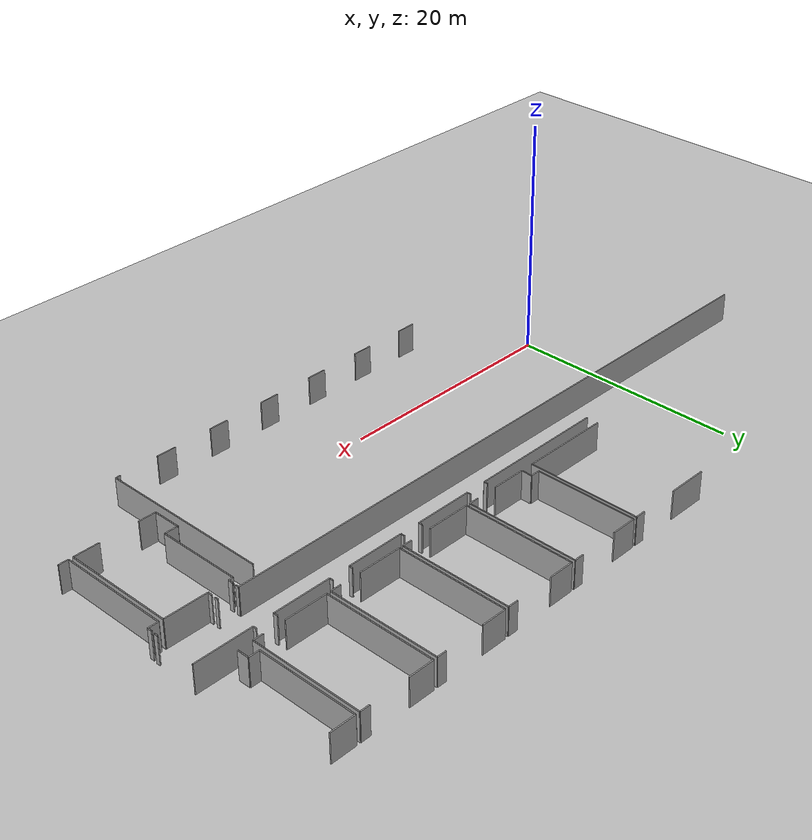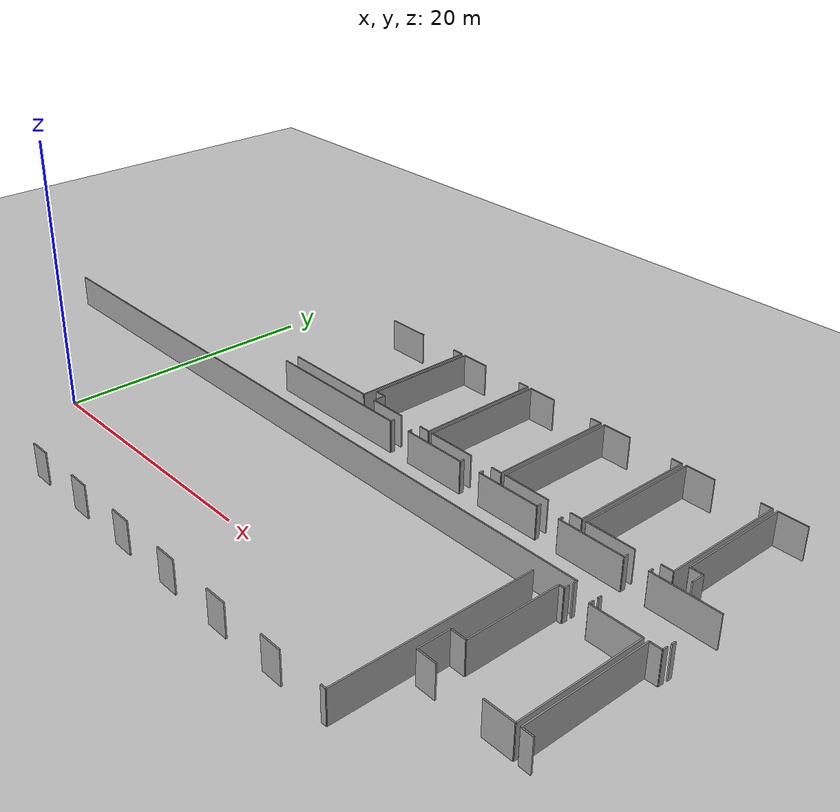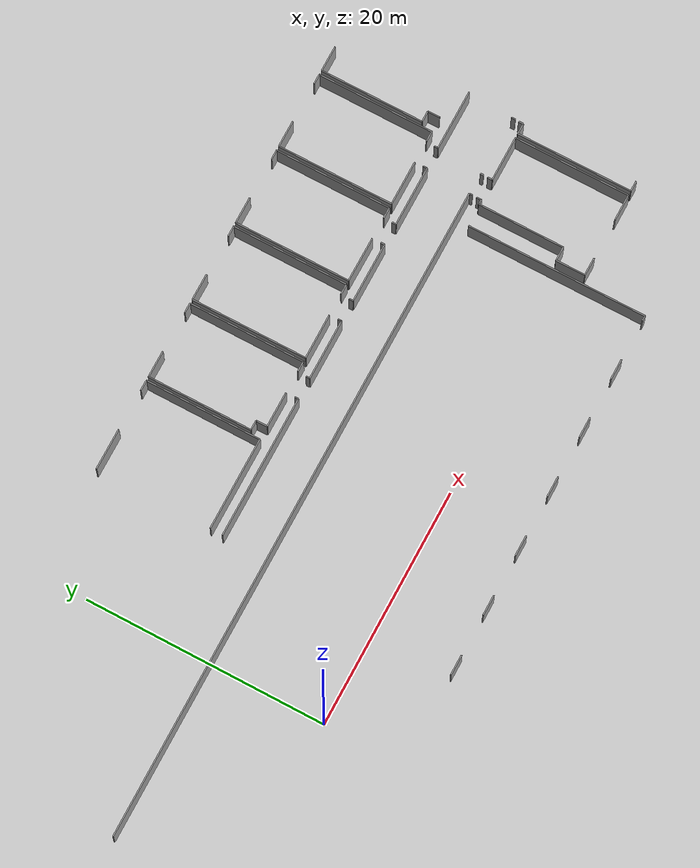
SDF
<sdf version="1.6">
 <world name="default">
  <model name="ground_plane">
   <static>1</static>
   <link name="link">
    <collision name="collision">
     <geometry><plane><normal>0 0 1</normal><size>100 100</size></plane></geometry>
     <surface><friction><ode><mu>100</mu><mu2>50</mu2></ode></friction></surface>
    </collision>
    <visual name="visual">
     <cast_shadows>0</cast_shadows>
     <geometry><plane><normal>0 0 1</normal><size>100 100</size></plane></geometry>
     <material>
      <script><uri>file://media/materials/scripts/gazebo.material</uri><name>Gazebo/Grey</name></script>
     </material>
    </visual>
   </link>
  </model>
  <model name="0510032196_A_40_1_104">
   <static>1</static>
   <link name="Wall_83">
    <collision name="Wall_83_Collision">
     <geometry><box><size>3.43119312694 0.1 2.5</size></box></geometry>
     <pose>1.71559656347 0 1.25 0 0 0</pose>
    </collision>
    <visual name="Wall_83_Visual">
     <pose>1.71559656347 0 1.25 0 0 0</pose>
     <geometry><box><size>3.43119312694 0.1 2.5</size></box></geometry>
     <material>
      <script><uri>file://media/materials/scripts/gazebo.material</uri><name>Gazebo/Grey</name></script>
      <ambient>1 1 1 1</ambient>
     </material>
    </visual>
    <pose>74.0686797824 -0.31976005287 0 0 0 0.0</pose>
   </link>
   <link name="Wall_84">
    <collision name="Wall_84_Collision">
     <geometry><box><size>0.885821768085 0.1 2.5</size></box></geometry>
     <pose>0.442910884042 0 1.25 0 0 0</pose>
    </collision>
    <visual name="Wall_84_Visual">
     <pose>0.442910884042 0 1.25 0 0 0</pose>
     <geometry><box><size>0.885821768085 0.1 2.5</size></box></geometry>
     <material>
      <script><uri>file://media/materials/scripts/gazebo.material</uri><name>Gazebo/Grey</name></script>
      <ambient>1 1 1 1</ambient>
     </material>
    </visual>
    <pose>80.917721519 -0.31976005287 0 0 0 0.0</pose>
   </link>
   <link name="Wall_85">
    <collision name="Wall_85_Collision">
     <geometry><box><size>9.62520969956 0.1 2.5</size></box></geometry>
     <pose>4.81260484978 0 1.25 0 0 0</pose>
    </collision>
    <visual name="Wall_85_Visual">
     <pose>4.81260484978 0 1.25 0 0 0</pose>
     <geometry><box><size>9.62520969956 0.1 2.5</size></box></geometry>
     <material>
      <script><uri>file://media/materials/scripts/gazebo.material</uri><name>Gazebo/Grey</name></script>
      <ambient>1 1 1 1</ambient>
     </material>
    </visual>
    <pose>81.8035432871 -0.31976005287 0 0 0 -1.57079632679</pose>
   </link>
   <link name="Wall_86">
    <collision name="Wall_86_Collision">
     <geometry><box><size>7.70703065426 0.1 2.5</size></box></geometry>
     <pose>3.85351532713 0 1.25 0 0 0</pose>
    </collision>
    <visual name="Wall_86_Visual">
     <pose>3.85351532713 0 1.25 0 0 0</pose>
     <geometry><box><size>7.70703065426 0.1 2.5</size></box></geometry>
     <material>
      <script><uri>file://media/materials/scripts/gazebo.material</uri><name>Gazebo/Grey</name></script>
      <ambient>1 1 1 1</ambient>
     </material>
    </visual>
    <pose>81.8035432871 -9.94496975243 0 0 0 3.14159265359</pose>
   </link>
   <link name="Wall_88">
    <collision name="Wall_88_Collision">
     <geometry><box><size>0.935895480657 0.1 2.5</size></box></geometry>
     <pose>0.467947740328 0 1.25 0 0 0</pose>
    </collision>
    <visual name="Wall_88_Visual">
     <pose>0.467947740328 0 1.25 0 0 0</pose>
     <geometry><box><size>0.935895480657 0.1 2.5</size></box></geometry>
     <material>
      <script><uri>file://media/materials/scripts/gazebo.material</uri><name>Gazebo/Grey</name></script>
      <ambient>1 1 1 1</ambient>
     </material>
    </visual>
    <pose>82.9399877993 -9.94598647756 0 0 0 1.57079632679</pose>
   </link>
   <link name="Wall_89">
    <collision name="Wall_89_Collision">
     <geometry><box><size>0.818972090895 0.1 2.5</size></box></geometry>
     <pose>0.409486045448 0 1.25 0 0 0</pose>
    </collision>
    <visual name="Wall_89_Visual">
     <pose>0.409486045448 0 1.25 0 0 0</pose>
     <geometry><box><size>0.818972090895 0.1 2.5</size></box></geometry>
     <material>
      <script><uri>file://media/materials/scripts/gazebo.material</uri><name>Gazebo/Grey</name></script>
      <ambient>1 1 1 1</ambient>
     </material>
    </visual>
    <pose>82.9399877993 -9.0100909969 0 0 0 3.14159265359</pose>
   </link>
   <link name="Wall_90">
    <collision name="Wall_90_Collision">
     <geometry><box><size>8.69033094403 0.1 2.5</size></box></geometry>
     <pose>4.34516547201 0 1.25 0 0 0</pose>
    </collision>
    <visual name="Wall_90_Visual">
     <pose>4.34516547201 0 1.25 0 0 0</pose>
     <geometry><box><size>8.69033094403 0.1 2.5</size></box></geometry>
     <material>
      <script><uri>file://media/materials/scripts/gazebo.material</uri><name>Gazebo/Grey</name></script>
      <ambient>1 1 1 1</ambient>
     </material>
    </visual>
    <pose>82.1210157084 -9.0100909969 0 0 0 1.57079632679</pose>
   </link>
   <link name="Wall_91">
    <collision name="Wall_91_Collision">
     <geometry><box><size>2.22434039957 0.1 2.5</size></box></geometry>
     <pose>1.11217019979 0 1.25 0 0 0</pose>
    </collision>
    <visual name="Wall_91_Visual">
     <pose>1.11217019979 0 1.25 0 0 0</pose>
     <geometry><box><size>2.22434039957 0.1 2.5</size></box></geometry>
     <material>
      <script><uri>file://media/materials/scripts/gazebo.material</uri><name>Gazebo/Grey</name></script>
      <ambient>1 1 1 1</ambient>
     </material>
    </visual>
    <pose>82.1210157084 -0.31976005287 0 0 0 0.0</pose>
   </link>
   <link name="Wall_92">
    <collision name="Wall_92_Collision">
     <geometry><box><size>0.848202938336 0.1 2.5</size></box></geometry>
     <pose>0.424101469168 0 1.25 0 0 0</pose>
    </collision>
    <visual name="Wall_92_Visual">
     <pose>0.424101469168 0 1.25 0 0 0</pose>
     <geometry><box><size>0.848202938336 0.1 2.5</size></box></geometry>
     <material>
      <script><uri>file://media/materials/scripts/gazebo.material</uri><name>Gazebo/Grey</name></script>
      <ambient>1 1 1 1</ambient>
     </material>
    </visual>
    <pose>87.7559605511 -0.31976005287 0 0 0 0.0</pose>
   </link>
   <link name="Wall_93">
    <collision name="Wall_93_Collision">
     <geometry><box><size>9.62965787199 0.1 2.5</size></box></geometry>
     <pose>4.814828936 0 1.25 0 0 0</pose>
    </collision>
    <visual name="Wall_93_Visual">
     <pose>4.814828936 0 1.25 0 0 0</pose>
     <geometry><box><size>9.62965787199 0.1 2.5</size></box></geometry>
     <material>
      <script><uri>file://media/materials/scripts/gazebo.material</uri><name>Gazebo/Grey</name></script>
      <ambient>1 1 1 1</ambient>
     </material>
    </visual>
    <pose>88.6041634894 -0.31976005287 0 0 0 -1.57079632679</pose>
   </link>
   <link name="Wall_94">
    <collision name="Wall_94_Collision">
     <geometry><box><size>0.871968888211 0.1 2.5</size></box></geometry>
     <pose>0.435984444106 0 1.25 0 0 0</pose>
    </collision>
    <visual name="Wall_94_Visual">
     <pose>0.435984444106 0 1.25 0 0 0</pose>
     <geometry><box><size>0.871968888211 0.1 2.5</size></box></geometry>
     <material>
      <script><uri>file://media/materials/scripts/gazebo.material</uri><name>Gazebo/Grey</name></script>
      <ambient>1 1 1 1</ambient>
     </material>
    </visual>
    <pose>88.6041634894 -9.94941792486 0 0 0 3.14159265359</pose>
   </link>
   <link name="Wall_95">
    <collision name="Wall_95_Collision">
     <geometry><box><size>2.92944128583 0.1 2.5</size></box></geometry>
     <pose>1.46472064292 0 1.25 0 0 0</pose>
    </collision>
    <visual name="Wall_95_Visual">
     <pose>1.46472064292 0 1.25 0 0 0</pose>
     <geometry><box><size>2.92944128583 0.1 2.5</size></box></geometry>
     <material>
      <script><uri>file://media/materials/scripts/gazebo.material</uri><name>Gazebo/Grey</name></script>
      <ambient>1 1 1 1</ambient>
     </material>
    </visual>
    <pose>85.8694270754 -9.94941792486 0 0 0 3.14042128753</pose>
   </link>
   <link name="Wall_96">
    <collision name="Wall_96_Collision">
     <geometry><box><size>9.6330893193 0.1 2.5</size></box></geometry>
     <pose>4.81654465965 0 1.25 0 0 0</pose>
    </collision>
    <visual name="Wall_96_Visual">
     <pose>4.81654465965 0 1.25 0 0 0</pose>
     <geometry><box><size>9.6330893193 0.1 2.5</size></box></geometry>
     <material>
      <script><uri>file://media/materials/scripts/gazebo.material</uri><name>Gazebo/Grey</name></script>
      <ambient>1 1 1 1</ambient>
     </material>
    </visual>
    <pose>88.9398098724 -9.96276244217 0 0 0 1.57079632679</pose>
   </link>
   <link name="Wall_97">
    <collision name="Wall_97_Collision">
     <geometry><box><size>2.22090895226 0.1 2.5</size></box></geometry>
     <pose>1.11045447613 0 1.25 0 0 0</pose>
    </collision>
    <visual name="Wall_97_Visual">
     <pose>1.11045447613 0 1.25 0 0 0</pose>
     <geometry><box><size>2.22090895226 0.1 2.5</size></box></geometry>
     <material>
      <script><uri>file://media/materials/scripts/gazebo.material</uri><name>Gazebo/Grey</name></script>
      <ambient>1 1 1 1</ambient>
     </material>
    </visual>
    <pose>88.9398098724 -0.329673122871 0 0 0 0.0</pose>
   </link>
   <link name="Wall_98">
    <collision name="Wall_98_Collision">
     <geometry><box><size>0.890142849881 0.1 2.5</size></box></geometry>
     <pose>0.44507142494 0 1.25 0 0 0</pose>
    </collision>
    <visual name="Wall_98_Visual">
     <pose>0.44507142494 0 1.25 0 0 0</pose>
     <geometry><box><size>0.890142849881 0.1 2.5</size></box></geometry>
     <material>
      <script><uri>file://media/materials/scripts/gazebo.material</uri><name>Gazebo/Grey</name></script>
      <ambient>1 1 1 1</ambient>
     </material>
    </visual>
    <pose>94.5452696863 -0.329673122871 0 0 0 0.0</pose>
   </link>
   <link name="Wall_99">
    <collision name="Wall_99_Collision">
     <geometry><box><size>9.62076152712 0.1 2.5</size></box></geometry>
     <pose>4.81038076356 0 1.25 0 0 0</pose>
    </collision>
    <visual name="Wall_99_Visual">
     <pose>4.81038076356 0 1.25 0 0 0</pose>
     <geometry><box><size>9.62076152712 0.1 2.5</size></box></geometry>
     <material>
      <script><uri>file://media/materials/scripts/gazebo.material</uri><name>Gazebo/Grey</name></script>
      <ambient>1 1 1 1</ambient>
     </material>
    </visual>
    <pose>95.4354125362 -0.329673122871 0 0 0 -1.57079632679</pose>
   </link>
   <link name="Wall_100">
    <collision name="Wall_100_Collision">
     <geometry><box><size>0.86815616898 0.1 2.5</size></box></geometry>
     <pose>0.43407808449 0 1.25 0 0 0</pose>
    </collision>
    <visual name="Wall_100_Visual">
     <pose>0.43407808449 0 1.25 0 0 0</pose>
     <geometry><box><size>0.86815616898 0.1 2.5</size></box></geometry>
     <material>
      <script><uri>file://media/materials/scripts/gazebo.material</uri><name>Gazebo/Grey</name></script>
      <ambient>1 1 1 1</ambient>
     </material>
    </visual>
    <pose>95.4354125362 -9.95043464999 0 0 0 3.14159265359</pose>
   </link>
   <link name="Wall_101">
    <collision name="Wall_101_Collision">
     <geometry><box><size>3.7673680424 0.1 2.5</size></box></geometry>
     <pose>1.8836840212 0 1.25 0 0 0</pose>
    </collision>
    <visual name="Wall_101_Visual">
     <pose>1.8836840212 0 1.25 0 0 0</pose>
     <geometry><box><size>3.7673680424 0.1 2.5</size></box></geometry>
     <material>
      <script><uri>file://media/materials/scripts/gazebo.material</uri><name>Gazebo/Grey</name></script>
      <ambient>1 1 1 1</ambient>
     </material>
    </visual>
    <pose>92.7071577449 -9.95043464999 0 0 0 -3.13832039188</pose>
   </link>
   <link name="Wall_102">
    <collision name="Wall_102_Collision">
     <geometry><box><size>9.62660769661 0.1 2.5</size></box></geometry>
     <pose>4.8133038483 0 1.25 0 0 0</pose>
    </collision>
    <visual name="Wall_102_Visual">
     <pose>4.8133038483 0 1.25 0 0 0</pose>
     <geometry><box><size>9.62660769661 0.1 2.5</size></box></geometry>
     <material>
      <script><uri>file://media/materials/scripts/gazebo.material</uri><name>Gazebo/Grey</name></script>
      <ambient>1 1 1 1</ambient>
     </material>
    </visual>
    <pose>95.758731127 -9.94598647756 0 0 0 1.57079632679</pose>
   </link>
   <link name="Wall_103">
    <collision name="Wall_103_Collision">
     <geometry><box><size>2.22281531188 0.1 2.5</size></box></geometry>
     <pose>1.11140765594 0 1.25 0 0 0</pose>
    </collision>
    <visual name="Wall_103_Visual">
     <pose>1.11140765594 0 1.25 0 0 0</pose>
     <geometry><box><size>2.22281531188 0.1 2.5</size></box></geometry>
     <material>
      <script><uri>file://media/materials/scripts/gazebo.material</uri><name>Gazebo/Grey</name></script>
      <ambient>1 1 1 1</ambient>
     </material>
    </visual>
    <pose>95.758731127 -0.319378780947 0 0 0 0.0</pose>
   </link>
   <link name="Wall_104">
    <collision name="Wall_104_Collision">
     <geometry><box><size>0.818972090895 0.1 2.5</size></box></geometry>
     <pose>0.409486045448 0 1.25 0 0 0</pose>
    </collision>
    <visual name="Wall_104_Visual">
     <pose>0.409486045448 0 1.25 0 0 0</pose>
     <geometry><box><size>0.818972090895 0.1 2.5</size></box></geometry>
     <material>
      <script><uri>file://media/materials/scripts/gazebo.material</uri><name>Gazebo/Grey</name></script>
      <ambient>1 1 1 1</ambient>
     </material>
    </visual>
    <pose>101.432692797 -0.319378780947 0 0 0 0.0</pose>
   </link>
   <link name="Wall_105">
    <collision name="Wall_105_Collision">
     <geometry><box><size>9.64706928982 0.1 2.5</size></box></geometry>
     <pose>4.82353464491 0 1.25 0 0 0</pose>
    </collision>
    <visual name="Wall_105_Visual">
     <pose>4.82353464491 0 1.25 0 0 0</pose>
     <geometry><box><size>9.64706928982 0.1 2.5</size></box></geometry>
     <material>
      <script><uri>file://media/materials/scripts/gazebo.material</uri><name>Gazebo/Grey</name></script>
      <ambient>1 1 1 1</ambient>
     </material>
    </visual>
    <pose>102.251664887 -0.319378780947 0 0 0 -1.57079632679</pose>
   </link>
   <link name="Wall_106">
    <collision name="Wall_106_Collision">
     <geometry><box><size>0.925092776168 0.1 2.5</size></box></geometry>
     <pose>0.462546388084 0 1.25 0 0 0</pose>
    </collision>
    <visual name="Wall_106_Visual">
     <pose>0.462546388084 0 1.25 0 0 0</pose>
     <geometry><box><size>0.925092776168 0.1 2.5</size></box></geometry>
     <material>
      <script><uri>file://media/materials/scripts/gazebo.material</uri><name>Gazebo/Grey</name></script>
      <ambient>1 1 1 1</ambient>
     </material>
    </visual>
    <pose>102.251664887 -9.96644807076 0 0 0 3.14159265359</pose>
   </link>
   <link name="Wall_107">
    <collision name="Wall_107_Collision">
     <geometry><box><size>3.75151734378 0.1 2.5</size></box></geometry>
     <pose>1.87575867189 0 1.25 0 0 0</pose>
    </collision>
    <visual name="Wall_107_Visual">
     <pose>1.87575867189 0 1.25 0 0 0</pose>
     <geometry><box><size>3.75151734378 0.1 2.5</size></box></geometry>
     <material>
      <script><uri>file://media/materials/scripts/gazebo.material</uri><name>Gazebo/Grey</name></script>
      <ambient>1 1 1 1</ambient>
     </material>
    </visual>
    <pose>99.5101926694 -9.96644807076 0 0 0 3.1361384086</pose>
   </link>
   <link name="Wall_108">
    <collision name="Wall_108_Collision">
     <geometry><box><size>9.6516445529 0.1 2.5</size></box></geometry>
     <pose>4.82582227645 0 1.25 0 0 0</pose>
    </collision>
    <visual name="Wall_108_Visual">
     <pose>4.82582227645 0 1.25 0 0 0</pose>
     <geometry><box><size>9.6516445529 0.1 2.5</size></box></geometry>
     <material>
      <script><uri>file://media/materials/scripts/gazebo.material</uri><name>Gazebo/Grey</name></script>
      <ambient>1 1 1 1</ambient>
     </material>
    </visual>
    <pose>102.597986884 -9.96263535153 0 0 0 1.57079632679</pose>
   </link>
   <link name="Wall_109">
    <collision name="Wall_109_Collision">
     <geometry><box><size>2.21912968329 0.1 2.5</size></box></geometry>
     <pose>1.10956484165 0 1.25 0 0 0</pose>
    </collision>
    <visual name="Wall_109_Visual">
     <pose>1.10956484165 0 1.25 0 0 0</pose>
     <geometry><box><size>2.21912968329 0.1 2.5</size></box></geometry>
     <material>
      <script><uri>file://media/materials/scripts/gazebo.material</uri><name>Gazebo/Grey</name></script>
      <ambient>1 1 1 1</ambient>
     </material>
    </visual>
    <pose>102.597986884 -0.310990798638 0 0 0 0.0</pose>
   </link>
   <link name="Wall_110">
    <collision name="Wall_110_Collision">
     <geometry><box><size>0.85239692949 0.1 2.5</size></box></geometry>
     <pose>0.426198464745 0 1.25 0 0 0</pose>
    </collision>
    <visual name="Wall_110_Visual">
     <pose>0.426198464745 0 1.25 0 0 0</pose>
     <geometry><box><size>0.85239692949 0.1 2.5</size></box></geometry>
     <material>
      <script><uri>file://media/materials/scripts/gazebo.material</uri><name>Gazebo/Grey</name></script>
      <ambient>1 1 1 1</ambient>
     </material>
    </visual>
    <pose>108.226450104 -0.310990798638 0 0 0 0.0</pose>
   </link>
   <link name="Wall_111">
    <collision name="Wall_111_Collision">
     <geometry><box><size>9.65177164354 0.1 2.5</size></box></geometry>
     <pose>4.82588582177 0 1.25 0 0 0</pose>
    </collision>
    <visual name="Wall_111_Visual">
     <pose>4.82588582177 0 1.25 0 0 0</pose>
     <geometry><box><size>9.65177164354 0.1 2.5</size></box></geometry>
     <material>
      <script><uri>file://media/materials/scripts/gazebo.material</uri><name>Gazebo/Grey</name></script>
      <ambient>1 1 1 1</ambient>
     </material>
    </visual>
    <pose>109.078847034 -0.310990798638 0 0 0 -1.57079632679</pose>
   </link>
   <link name="Wall_112">
    <collision name="Wall_112_Collision">
     <geometry><box><size>0.885821768085 0.1 2.5</size></box></geometry>
     <pose>0.442910884042 0 1.25 0 0 0</pose>
    </collision>
    <visual name="Wall_112_Visual">
     <pose>0.442910884042 0 1.25 0 0 0</pose>
     <geometry><box><size>0.885821768085 0.1 2.5</size></box></geometry>
     <material>
      <script><uri>file://media/materials/scripts/gazebo.material</uri><name>Gazebo/Grey</name></script>
      <ambient>1 1 1 1</ambient>
     </material>
    </visual>
    <pose>109.078847034 -9.96276244217 0 0 0 3.14159265359</pose>
   </link>
   <link name="Wall_113">
    <collision name="Wall_113_Collision">
     <geometry><box><size>3.72426414736 0.1 2.5</size></box></geometry>
     <pose>1.86213207368 0 1.25 0 0 0</pose>
    </collision>
    <visual name="Wall_113_Visual">
     <pose>1.86213207368 0 1.25 0 0 0</pose>
     <geometry><box><size>3.72426414736 0.1 2.5</size></box></geometry>
     <material>
      <script><uri>file://media/materials/scripts/gazebo.material</uri><name>Gazebo/Grey</name></script>
      <ambient>1 1 1 1</ambient>
     </material>
    </visual>
    <pose>106.322251029 -9.96276244217 0 0 0 3.14155852856</pose>
   </link>
   <link name="Wall_114">
    <collision name="Wall_114_Collision">
     <geometry><box><size>1.01672512836 0.1 2.5</size></box></geometry>
     <pose>0.508362564181 0 1.25 0 0 0</pose>
    </collision>
    <visual name="Wall_114_Visual">
     <pose>0.508362564181 0 1.25 0 0 0</pose>
     <geometry><box><size>1.01672512836 0.1 2.5</size></box></geometry>
     <material>
      <script><uri>file://media/materials/scripts/gazebo.material</uri><name>Gazebo/Grey</name></script>
      <ambient>1 1 1 1</ambient>
     </material>
    </visual>
    <pose>110.368181587 -9.95488282243 0 0 0 1.57079632679</pose>
   </link>
   <link name="Wall_115">
    <collision name="Wall_115_Collision">
     <geometry><box><size>0.940470743734 0.1 2.5</size></box></geometry>
     <pose>0.470235371867 0 1.25 0 0 0</pose>
    </collision>
    <visual name="Wall_115_Visual">
     <pose>0.470235371867 0 1.25 0 0 0</pose>
     <geometry><box><size>0.940470743734 0.1 2.5</size></box></geometry>
     <material>
      <script><uri>file://media/materials/scripts/gazebo.material</uri><name>Gazebo/Grey</name></script>
      <ambient>1 1 1 1</ambient>
     </material>
    </visual>
    <pose>110.368181587 -8.93815769407 0 0 0 3.14159265359</pose>
   </link>
   <link name="Wall_116">
    <collision name="Wall_116_Collision">
     <geometry><box><size>8.62004981953 0.1 2.5</size></box></geometry>
     <pose>4.31002490977 0 1.25 0 0 0</pose>
    </collision>
    <visual name="Wall_116_Visual">
     <pose>4.31002490977 0 1.25 0 0 0</pose>
     <geometry><box><size>8.62004981953 0.1 2.5</size></box></geometry>
     <material>
      <script><uri>file://media/materials/scripts/gazebo.material</uri><name>Gazebo/Grey</name></script>
      <ambient>1 1 1 1</ambient>
     </material>
    </visual>
    <pose>109.427710843 -8.93815769407 0 0 0 1.57079632679</pose>
   </link>
   <link name="Wall_117">
    <collision name="Wall_117_Collision">
     <geometry><box><size>2.17197905546 0.1 2.5</size></box></geometry>
     <pose>1.08598952773 0 1.25 0 0 0</pose>
    </collision>
    <visual name="Wall_117_Visual">
     <pose>1.08598952773 0 1.25 0 0 0</pose>
     <geometry><box><size>2.17197905546 0.1 2.5</size></box></geometry>
     <material>
      <script><uri>file://media/materials/scripts/gazebo.material</uri><name>Gazebo/Grey</name></script>
      <ambient>1 1 1 1</ambient>
     </material>
    </visual>
    <pose>109.427710843 -0.318107874536 0 0 0 0.0</pose>
   </link>
   <link name="Wall_163">
    <collision name="Wall_163_Collision">
     <geometry><box><size>9.60665446597 0.1 2.5</size></box></geometry>
     <pose>4.80332723298 0 1.25 0 0 0</pose>
    </collision>
    <visual name="Wall_163_Visual">
     <pose>4.80332723298 0 1.25 0 0 0</pose>
     <geometry><box><size>9.60665446597 0.1 2.5</size></box></geometry>
     <material>
      <script><uri>file://media/materials/scripts/gazebo.material</uri><name>Gazebo/Grey</name></script>
      <ambient>1 1 1 1</ambient>
     </material>
    </visual>
    <pose>112.00637995 -25.3817802857 0 0 0 1.57079632679</pose>
   </link>
   <link name="Wall_164">
    <collision name="Wall_164_Collision">
     <geometry><box><size>0.887092674495 0.1 2.5</size></box></geometry>
     <pose>0.443546337248 0 1.25 0 0 0</pose>
    </collision>
    <visual name="Wall_164_Visual">
     <pose>0.443546337248 0 1.25 0 0 0</pose>
     <geometry><box><size>0.887092674495 0.1 2.5</size></box></geometry>
     <material>
      <script><uri>file://media/materials/scripts/gazebo.material</uri><name>Gazebo/Grey</name></script>
      <ambient>1 1 1 1</ambient>
     </material>
    </visual>
    <pose>112.00637995 -15.7751258197 0 0 0 0.0</pose>
   </link>
   <link name="Wall_165">
    <collision name="Wall_165_Collision">
     <geometry><box><size>0.404275329165 0.1 2.5</size></box></geometry>
     <pose>0.202137664582 0 1.25 0 0 0</pose>
    </collision>
    <visual name="Wall_165_Visual">
     <pose>0.202137664582 0 1.25 0 0 0</pose>
     <geometry><box><size>0.404275329165 0.1 2.5</size></box></geometry>
     <material>
      <script><uri>file://media/materials/scripts/gazebo.material</uri><name>Gazebo/Grey</name></script>
      <ambient>1 1 1 1</ambient>
     </material>
    </visual>
    <pose>112.893472625 -15.7751258197 0 0 0 1.57079632679</pose>
   </link>
   <link name="Wall_170">
    <collision name="Wall_170_Collision">
     <geometry><box><size>0.861698923726 0.1 2.5</size></box></geometry>
     <pose>0.430849461863 0 1.25 0 0 0</pose>
    </collision>
    <visual name="Wall_170_Visual">
     <pose>0.430849461863 0 1.25 0 0 0</pose>
     <geometry><box><size>0.861698923726 0.1 2.5</size></box></geometry>
     <material>
      <script><uri>file://media/materials/scripts/gazebo.material</uri><name>Gazebo/Grey</name></script>
      <ambient>1 1 1 1</ambient>
     </material>
    </visual>
    <pose>112.868054496 -25.3882619084 0 0 0 3.13407067156</pose>
   </link>
   <link name="Wall_171">
    <collision name="Wall_171_Collision">
     <geometry><box><size>2.42793960653 0.1 2.5</size></box></geometry>
     <pose>1.21396980326 0 1.25 0 0 0</pose>
    </collision>
    <visual name="Wall_171_Visual">
     <pose>1.21396980326 0 1.25 0 0 0</pose>
     <geometry><box><size>2.42793960653 0.1 2.5</size></box></geometry>
     <material>
      <script><uri>file://media/materials/scripts/gazebo.material</uri><name>Gazebo/Grey</name></script>
      <ambient>1 1 1 1</ambient>
     </material>
    </visual>
    <pose>104.520868283 -25.3681815871 0 0 0 1.57079632679</pose>
   </link>
   <link name="Wall_172">
    <collision name="Wall_172_Collision">
     <geometry><box><size>1.16529408774 0.1 2.5</size></box></geometry>
     <pose>0.582647043872 0 1.25 0 0 0</pose>
    </collision>
    <visual name="Wall_172_Visual">
     <pose>0.582647043872 0 1.25 0 0 0</pose>
     <geometry><box><size>1.16529408774 0.1 2.5</size></box></geometry>
     <material>
      <script><uri>file://media/materials/scripts/gazebo.material</uri><name>Gazebo/Grey</name></script>
      <ambient>1 1 1 1</ambient>
     </material>
    </visual>
    <pose>104.520868283 -22.9402419806 0 0 0 0.0</pose>
   </link>
   <link name="Wall_173">
    <collision name="Wall_173_Collision">
     <geometry><box><size>7.17197905546 0.1 2.5</size></box></geometry>
     <pose>3.58598952773 0 1.25 0 0 0</pose>
    </collision>
    <visual name="Wall_173_Visual">
     <pose>3.58598952773 0 1.25 0 0 0</pose>
     <geometry><box><size>7.17197905546 0.1 2.5</size></box></geometry>
     <material>
      <script><uri>file://media/materials/scripts/gazebo.material</uri><name>Gazebo/Grey</name></script>
      <ambient>1 1 1 1</ambient>
     </material>
    </visual>
    <pose>105.686162371 -22.9402419806 0 0 0 1.57079632679</pose>
   </link>
   <link name="Wall_174">
    <collision name="Wall_174_Collision">
     <geometry><box><size>0.391312083778 0.1 2.5</size></box></geometry>
     <pose>0.195656041889 0 1.25 0 0 0</pose>
    </collision>
    <visual name="Wall_174_Visual">
     <pose>0.195656041889 0 1.25 0 0 0</pose>
     <geometry><box><size>0.391312083778 0.1 2.5</size></box></geometry>
     <material>
      <script><uri>file://media/materials/scripts/gazebo.material</uri><name>Gazebo/Grey</name></script>
      <ambient>1 1 1 1</ambient>
     </material>
    </visual>
    <pose>105.686162371 -15.7682629251 0 0 0 0.0</pose>
   </link>
   <link name="Wall_175">
    <collision name="Wall_175_Collision">
     <geometry><box><size>0.399700066087 0.1 2.5</size></box></geometry>
     <pose>0.199850033044 0 1.25 0 0 0</pose>
    </collision>
    <visual name="Wall_175_Visual">
     <pose>0.199850033044 0 1.25 0 0 0</pose>
     <geometry><box><size>0.399700066087 0.1 2.5</size></box></geometry>
     <material>
      <script><uri>file://media/materials/scripts/gazebo.material</uri><name>Gazebo/Grey</name></script>
      <ambient>1 1 1 1</ambient>
     </material>
    </visual>
    <pose>106.077474455 -15.7682629251 0 0 0 1.57079632679</pose>
   </link>
   <link name="Wall_176">
    <collision name="Wall_176_Collision">
     <geometry><box><size>0.393472624676 0.1 2.5</size></box></geometry>
     <pose>0.196736312338 0 1.25 0 0 0</pose>
    </collision>
    <visual name="Wall_176_Visual">
     <pose>0.196736312338 0 1.25 0 0 0</pose>
     <geometry><box><size>0.393472624676 0.1 2.5</size></box></geometry>
     <material>
      <script><uri>file://media/materials/scripts/gazebo.material</uri><name>Gazebo/Grey</name></script>
      <ambient>1 1 1 1</ambient>
     </material>
    </visual>
    <pose>107.867164862 -15.368562859 0 0 0 -1.57079632679</pose>
   </link>
   <link name="Wall_177">
    <collision name="Wall_177_Collision">
     <geometry><box><size>3.77700676122 0.1 2.5</size></box></geometry>
     <pose>1.88850338061 0 1.25 0 0 0</pose>
    </collision>
    <visual name="Wall_177_Visual">
     <pose>1.88850338061 0 1.25 0 0 0</pose>
     <geometry><box><size>3.77700676122 0.1 2.5</size></box></geometry>
     <material>
      <script><uri>file://media/materials/scripts/gazebo.material</uri><name>Gazebo/Grey</name></script>
      <ambient>1 1 1 1</ambient>
     </material>
    </visual>
    <pose>107.867164862 -15.7620354837 0 0 0 0.0</pose>
   </link>
   <link name="Wall_178">
    <collision name="Wall_178_Collision">
     <geometry><box><size>9.61694880789 0.1 2.5</size></box></geometry>
     <pose>4.80847440394 0 1.25 0 0 0</pose>
    </collision>
    <visual name="Wall_178_Visual">
     <pose>4.80847440394 0 1.25 0 0 0</pose>
     <geometry><box><size>9.61694880789 0.1 2.5</size></box></geometry>
     <material>
      <script><uri>file://media/materials/scripts/gazebo.material</uri><name>Gazebo/Grey</name></script>
      <ambient>1 1 1 1</ambient>
     </material>
    </visual>
    <pose>111.644171623 -15.7620354837 0 0 0 -1.57079632679</pose>
   </link>
   <link name="Wall_179">
    <collision name="Wall_179_Collision">
     <geometry><box><size>2.2197651365 0.1 2.5</size></box></geometry>
     <pose>1.10988256825 0 1.25 0 0 0</pose>
    </collision>
    <visual name="Wall_179_Visual">
     <pose>1.10988256825 0 1.25 0 0 0</pose>
     <geometry><box><size>2.2197651365 0.1 2.5</size></box></geometry>
     <material>
      <script><uri>file://media/materials/scripts/gazebo.material</uri><name>Gazebo/Grey</name></script>
      <ambient>1 1 1 1</ambient>
     </material>
    </visual>
    <pose>111.644171623 -25.3789842916 0 0 0 3.14159265359</pose>
   </link>
   <link name="Wall_180">
    <collision name="Wall_180_Collision">
     <geometry><box><size>1.50504614081 0.1 2.5</size></box></geometry>
     <pose>0.752523070404 0 1.25 0 0 0</pose>
    </collision>
    <visual name="Wall_180_Visual">
     <pose>0.752523070404 0 1.25 0 0 0</pose>
     <geometry><box><size>1.50504614081 0.1 2.5</size></box></geometry>
     <material>
      <script><uri>file://media/materials/scripts/gazebo.material</uri><name>Gazebo/Grey</name></script>
      <ambient>1 1 1 1</ambient>
     </material>
    </visual>
    <pose>106.025875655 -25.3789842916 0 0 0 3.13441493528</pose>
   </link>
   <link name="Wall_192">
    <collision name="Wall_192_Collision">
     <geometry><box><size>14.95043465 0.1 2.5</size></box></geometry>
     <pose>7.475217325 0 1.25 0 0 0</pose>
    </collision>
    <visual name="Wall_192_Visual">
     <pose>7.475217325 0 1.25 0 0 0</pose>
     <geometry><box><size>14.95043465 0.1 2.5</size></box></geometry>
     <material>
      <script><uri>file://media/materials/scripts/gazebo.material</uri><name>Gazebo/Grey</name></script>
      <ambient>1 1 1 1</ambient>
     </material>
    </visual>
    <pose>103.814244319 -15.869935438 0 0 0 -1.57079632679</pose>
   </link>
   <link name="Wall_193">
    <collision name="Wall_193_Collision">
     <geometry><box><size>0.409358954807 0.1 2.5</size></box></geometry>
     <pose>0.204679477403 0 1.25 0 0 0</pose>
    </collision>
    <visual name="Wall_193_Visual">
     <pose>0.204679477403 0 1.25 0 0 0</pose>
     <geometry><box><size>0.409358954807 0.1 2.5</size></box></geometry>
     <material>
      <script><uri>file://media/materials/scripts/gazebo.material</uri><name>Gazebo/Grey</name></script>
      <ambient>1 1 1 1</ambient>
     </material>
    </visual>
    <pose>103.814244319 -30.8203700879 0 0 0 3.14159265359</pose>
   </link>
   <link name="Wall_194">
    <collision name="Wall_194_Collision">
     <geometry><box><size>1.70047277718 0.1 2.5</size></box></geometry>
     <pose>0.850236388592 0 1.25 0 0 0</pose>
    </collision>
    <visual name="Wall_194_Visual">
     <pose>0.850236388592 0 1.25 0 0 0</pose>
     <geometry><box><size>1.70047277718 0.1 2.5</size></box></geometry>
     <material>
      <script><uri>file://media/materials/scripts/gazebo.material</uri><name>Gazebo/Grey</name></script>
      <ambient>1 1 1 1</ambient>
     </material>
    </visual>
    <pose>99.9809364038 -30.8203700879 0 0 0 3.14159265359</pose>
   </link>
   <link name="Wall_195">
    <collision name="Wall_195_Collision">
     <geometry><box><size>1.72207818616 0.1 2.5</size></box></geometry>
     <pose>0.861039093081 0 1.25 0 0 0</pose>
    </collision>
    <visual name="Wall_195_Visual">
     <pose>0.861039093081 0 1.25 0 0 0</pose>
     <geometry><box><size>1.72207818616 0.1 2.5</size></box></geometry>
     <material>
      <script><uri>file://media/materials/scripts/gazebo.material</uri><name>Gazebo/Grey</name></script>
      <ambient>1 1 1 1</ambient>
     </material>
    </visual>
    <pose>94.8797722536 -30.8203700879 0 0 0 3.14159265359</pose>
   </link>
   <link name="Wall_196">
    <collision name="Wall_196_Collision">
     <geometry><box><size>1.72207818616 0.1 2.5</size></box></geometry>
     <pose>0.861039093081 0 1.25 0 0 0</pose>
    </collision>
    <visual name="Wall_196_Visual">
     <pose>0.861039093081 0 1.25 0 0 0</pose>
     <geometry><box><size>1.72207818616 0.1 2.5</size></box></geometry>
     <material>
      <script><uri>file://media/materials/scripts/gazebo.material</uri><name>Gazebo/Grey</name></script>
      <ambient>1 1 1 1</ambient>
     </material>
    </visual>
    <pose>89.7423872706 -30.8203700879 0 0 0 3.14159265359</pose>
   </link>
   <link name="Wall_197">
    <collision name="Wall_197_Collision">
     <geometry><box><size>1.72207818616 0.1 2.5</size></box></geometry>
     <pose>0.861039093081 0 1.25 0 0 0</pose>
    </collision>
    <visual name="Wall_197_Visual">
     <pose>0.861039093081 0 1.25 0 0 0</pose>
     <geometry><box><size>1.72207818616 0.1 2.5</size></box></geometry>
     <material>
      <script><uri>file://media/materials/scripts/gazebo.material</uri><name>Gazebo/Grey</name></script>
      <ambient>1 1 1 1</ambient>
     </material>
    </visual>
    <pose>84.641350211 -30.8203700879 0 0 0 3.14159265359</pose>
   </link>
   <link name="Wall_198">
    <collision name="Wall_198_Collision">
     <geometry><box><size>1.70758985308 0.1 2.5</size></box></geometry>
     <pose>0.853794926542 0 1.25 0 0 0</pose>
    </collision>
    <visual name="Wall_198_Visual">
     <pose>0.853794926542 0 1.25 0 0 0</pose>
     <geometry><box><size>1.70758985308 0.1 2.5</size></box></geometry>
     <material>
      <script><uri>file://media/materials/scripts/gazebo.material</uri><name>Gazebo/Grey</name></script>
      <ambient>1 1 1 1</ambient>
     </material>
    </visual>
    <pose>79.503965228 -30.8203700879 0 0 0 3.14159265359</pose>
   </link>
   <link name="Wall_199">
    <collision name="Wall_199_Collision">
     <geometry><box><size>1.67124192974 0.1 2.5</size></box></geometry>
     <pose>0.835620964872 0 1.25 0 0 0</pose>
    </collision>
    <visual name="Wall_199_Visual">
     <pose>0.835620964872 0 1.25 0 0 0</pose>
     <geometry><box><size>1.67124192974 0.1 2.5</size></box></geometry>
     <material>
      <script><uri>file://media/materials/scripts/gazebo.material</uri><name>Gazebo/Grey</name></script>
      <ambient>1 1 1 1</ambient>
     </material>
    </visual>
    <pose>74.3884398353 -30.8203700879 0 0 0 3.14159265359</pose>
   </link>
   <link name="Wall_449">
    <collision name="Wall_449_Collision">
     <geometry><box><size>11.8661989731 0.1 2.5</size></box></geometry>
     <pose>5.93309948655 0 1.25 0 0 0</pose>
    </collision>
    <visual name="Wall_449_Visual">
     <pose>5.93309948655 0 1.25 0 0 0</pose>
     <geometry><box><size>11.8661989731 0.1 2.5</size></box></geometry>
     <material>
      <script><uri>file://media/materials/scripts/gazebo.material</uri><name>Gazebo/Grey</name></script>
      <ambient>1 1 1 1</ambient>
     </material>
    </visual>
    <pose>74.0403385695 -10.9905444563 0 0 0 0.0</pose>
   </link>
   <link name="Wall_450">
    <collision name="Wall_450_Collision">
     <geometry><box><size>0.317599511972 0.1 2.5</size></box></geometry>
     <pose>0.158799755986 0 1.25 0 0 0</pose>
    </collision>
    <visual name="Wall_450_Visual">
     <pose>0.158799755986 0 1.25 0 0 0</pose>
     <geometry><box><size>0.317599511972 0.1 2.5</size></box></geometry>
     <material>
      <script><uri>file://media/materials/scripts/gazebo.material</uri><name>Gazebo/Grey</name></script>
      <ambient>1 1 1 1</ambient>
     </material>
    </visual>
    <pose>85.9065375426 -10.9905444563 0 0 0 1.57079632679</pose>
   </link>
   <link name="Wall_451">
    <collision name="Wall_451_Collision">
     <geometry><box><size>0.309211529663 0.1 2.5</size></box></geometry>
     <pose>0.154605764831 0 1.25 0 0 0</pose>
    </collision>
    <visual name="Wall_451_Visual">
     <pose>0.154605764831 0 1.25 0 0 0</pose>
     <geometry><box><size>0.309211529663 0.1 2.5</size></box></geometry>
     <material>
      <script><uri>file://media/materials/scripts/gazebo.material</uri><name>Gazebo/Grey</name></script>
      <ambient>1 1 1 1</ambient>
     </material>
    </visual>
    <pose>87.7030908444 -10.6729449443 0 0 0 -1.57079632679</pose>
   </link>
   <link name="Wall_452">
    <collision name="Wall_452_Collision">
     <geometry><box><size>5.03888973616 0.1 2.5</size></box></geometry>
     <pose>2.51944486808 0 1.25 0 0 0</pose>
    </collision>
    <visual name="Wall_452_Visual">
     <pose>2.51944486808 0 1.25 0 0 0</pose>
     <geometry><box><size>5.03888973616 0.1 2.5</size></box></geometry>
     <material>
      <script><uri>file://media/materials/scripts/gazebo.material</uri><name>Gazebo/Grey</name></script>
      <ambient>1 1 1 1</ambient>
     </material>
    </visual>
    <pose>87.7030908444 -10.982156474 0 0 0 0.0</pose>
   </link>
   <link name="Wall_453">
    <collision name="Wall_453_Collision">
     <geometry><box><size>0.32586040364 0.1 2.5</size></box></geometry>
     <pose>0.16293020182 0 1.25 0 0 0</pose>
    </collision>
    <visual name="Wall_453_Visual">
     <pose>0.16293020182 0 1.25 0 0 0</pose>
     <geometry><box><size>0.32586040364 0.1 2.5</size></box></geometry>
     <material>
      <script><uri>file://media/materials/scripts/gazebo.material</uri><name>Gazebo/Grey</name></script>
      <ambient>1 1 1 1</ambient>
     </material>
    </visual>
    <pose>92.7419805806 -10.982156474 0 0 0 1.57079632679</pose>
   </link>
   <link name="Wall_454">
    <collision name="Wall_454_Collision">
     <geometry><box><size>0.345178181079 0.1 2.5</size></box></geometry>
     <pose>0.172589090539 0 1.25 0 0 0</pose>
    </collision>
    <visual name="Wall_454_Visual">
     <pose>0.172589090539 0 1.25 0 0 0</pose>
     <geometry><box><size>0.345178181079 0.1 2.5</size></box></geometry>
     <material>
      <script><uri>file://media/materials/scripts/gazebo.material</uri><name>Gazebo/Grey</name></script>
      <ambient>1 1 1 1</ambient>
     </material>
    </visual>
    <pose>94.5310355345 -10.6562960704 0 0 0 -1.57079632679</pose>
   </link>
   <link name="Wall_455">
    <collision name="Wall_455_Collision">
     <geometry><box><size>4.99809364038 0.1 2.5</size></box></geometry>
     <pose>2.49904682019 0 1.25 0 0 0</pose>
    </collision>
    <visual name="Wall_455_Visual">
     <pose>2.49904682019 0 1.25 0 0 0</pose>
     <geometry><box><size>4.99809364038 0.1 2.5</size></box></geometry>
     <material>
      <script><uri>file://media/materials/scripts/gazebo.material</uri><name>Gazebo/Grey</name></script>
      <ambient>1 1 1 1</ambient>
     </material>
    </visual>
    <pose>94.5310355345 -11.0014742514 0 0 0 0.0</pose>
   </link>
   <link name="Wall_456">
    <collision name="Wall_456_Collision">
     <geometry><box><size>0.325479131717 0.1 2.5</size></box></geometry>
     <pose>0.162739565858 0 1.25 0 0 0</pose>
    </collision>
    <visual name="Wall_456_Visual">
     <pose>0.162739565858 0 1.25 0 0 0</pose>
     <geometry><box><size>0.325479131717 0.1 2.5</size></box></geometry>
     <material>
      <script><uri>file://media/materials/scripts/gazebo.material</uri><name>Gazebo/Grey</name></script>
      <ambient>1 1 1 1</ambient>
     </material>
    </visual>
    <pose>99.5291291749 -11.0014742514 0 0 0 1.57079632679</pose>
   </link>
   <link name="Wall_457">
    <collision name="Wall_457_Collision">
     <geometry><box><size>0.334883839154 0.1 2.5</size></box></geometry>
     <pose>0.167441919577 0 1.25 0 0 0</pose>
    </collision>
    <visual name="Wall_457_Visual">
     <pose>0.167441919577 0 1.25 0 0 0</pose>
     <geometry><box><size>0.334883839154 0.1 2.5</size></box></geometry>
     <material>
      <script><uri>file://media/materials/scripts/gazebo.material</uri><name>Gazebo/Grey</name></script>
      <ambient>1 1 1 1</ambient>
     </material>
    </visual>
    <pose>101.336231 -10.6759951197 0 0 0 -1.57079632679</pose>
   </link>
   <link name="Wall_458">
    <collision name="Wall_458_Collision">
     <geometry><box><size>5.01194652026 0.1 2.5</size></box></geometry>
     <pose>2.50597326013 0 1.25 0 0 0</pose>
    </collision>
    <visual name="Wall_458_Visual">
     <pose>2.50597326013 0 1.25 0 0 0</pose>
     <geometry><box><size>5.01194652026 0.1 2.5</size></box></geometry>
     <material>
      <script><uri>file://media/materials/scripts/gazebo.material</uri><name>Gazebo/Grey</name></script>
      <ambient>1 1 1 1</ambient>
     </material>
    </visual>
    <pose>101.336231 -11.0108789589 0 0 0 0.0</pose>
   </link>
   <link name="Wall_459">
    <collision name="Wall_459_Collision">
     <geometry><box><size>0.358268517106 0.1 2.5</size></box></geometry>
     <pose>0.179134258553 0 1.25 0 0 0</pose>
    </collision>
    <visual name="Wall_459_Visual">
     <pose>0.179134258553 0 1.25 0 0 0</pose>
     <geometry><box><size>0.358268517106 0.1 2.5</size></box></geometry>
     <material>
      <script><uri>file://media/materials/scripts/gazebo.material</uri><name>Gazebo/Grey</name></script>
      <ambient>1 1 1 1</ambient>
     </material>
    </visual>
    <pose>106.34817752 -11.0108789589 0 0 0 1.57079632679</pose>
   </link>
   <link name="Wall_460">
    <collision name="Wall_460_Collision">
     <geometry><box><size>0.327004219409 0.1 2.5</size></box></geometry>
     <pose>0.163502109705 0 1.25 0 0 0</pose>
    </collision>
    <visual name="Wall_460_Visual">
     <pose>0.163502109705 0 1.25 0 0 0</pose>
     <geometry><box><size>0.327004219409 0.1 2.5</size></box></geometry>
     <material>
      <script><uri>file://media/materials/scripts/gazebo.material</uri><name>Gazebo/Grey</name></script>
      <ambient>1 1 1 1</ambient>
     </material>
    </visual>
    <pose>108.155660617 -10.6526104418 0 0 0 -1.57079632679</pose>
   </link>
   <link name="Wall_461">
    <collision name="Wall_461_Collision">
     <geometry><box><size>5.03520410757 0.1 2.5</size></box></geometry>
     <pose>2.51760205378 0 1.25 0 0 0</pose>
    </collision>
    <visual name="Wall_461_Visual">
     <pose>2.51760205378 0 1.25 0 0 0</pose>
     <geometry><box><size>5.03520410757 0.1 2.5</size></box></geometry>
     <material>
      <script><uri>file://media/materials/scripts/gazebo.material</uri><name>Gazebo/Grey</name></script>
      <ambient>1 1 1 1</ambient>
     </material>
    </visual>
    <pose>108.155660617 -10.9796146612 0 0 0 0.0</pose>
   </link>
   <link name="Wall_483">
    <collision name="Wall_483_Collision">
     <geometry><box><size>0.342763458899 0.1 2.5</size></box></geometry>
     <pose>0.171381729449 0 1.25 0 0 0</pose>
    </collision>
    <visual name="Wall_483_Visual">
     <pose>0.171381729449 0 1.25 0 0 0</pose>
     <geometry><box><size>0.342763458899 0.1 2.5</size></box></geometry>
     <material>
      <script><uri>file://media/materials/scripts/gazebo.material</uri><name>Gazebo/Grey</name></script>
      <ambient>1 1 1 1</ambient>
     </material>
    </visual>
    <pose>112.930328911 -15.0789232881 0 0 0 1.57079632679</pose>
   </link>
   <link name="Wall_485">
    <collision name="Wall_485_Collision">
     <geometry><box><size>0.287097758121 0.1 2.5</size></box></geometry>
     <pose>0.143548879061 0 1.25 0 0 0</pose>
    </collision>
    <visual name="Wall_485_Visual">
     <pose>0.143548879061 0 1.25 0 0 0</pose>
     <geometry><box><size>0.287097758121 0.1 2.5</size></box></geometry>
     <material>
      <script><uri>file://media/materials/scripts/gazebo.material</uri><name>Gazebo/Grey</name></script>
      <ambient>1 1 1 1</ambient>
     </material>
    </visual>
    <pose>107.882288648 -14.7361598292 0 0 0 -1.57079632679</pose>
   </link>
   <link name="Wall_486">
    <collision name="Wall_486_Collision">
     <geometry><box><size>0.284683035941 0.1 2.5</size></box></geometry>
     <pose>0.142341517971 0 1.25 0 0 0</pose>
    </collision>
    <visual name="Wall_486_Visual">
     <pose>0.142341517971 0 1.25 0 0 0</pose>
     <geometry><box><size>0.284683035941 0.1 2.5</size></box></geometry>
     <material>
      <script><uri>file://media/materials/scripts/gazebo.material</uri><name>Gazebo/Grey</name></script>
      <ambient>1 1 1 1</ambient>
     </material>
    </visual>
    <pose>106.091835697 -15.0232575873 0 0 0 1.57079632679</pose>
   </link>
   <link name="Wall_487">
    <collision name="Wall_487_Collision">
     <geometry><box><size>55.624904682 0.1 2.5</size></box></geometry>
     <pose>27.812452341 0 1.25 0 0 0</pose>
    </collision>
    <visual name="Wall_487_Visual">
     <pose>27.812452341 0 1.25 0 0 0</pose>
     <geometry><box><size>55.624904682 0.1 2.5</size></box></geometry>
     <material>
      <script><uri>file://media/materials/scripts/gazebo.material</uri><name>Gazebo/Grey</name></script>
      <ambient>1 1 1 1</ambient>
     </material>
    </visual>
    <pose>106.091835697 -14.7385745514 0 0 0 3.14159265359</pose>
   </link>
   <pose>-65.45 24.1679019877 0 0 0 0</pose>
  </model>
 </world>
</sdf>
